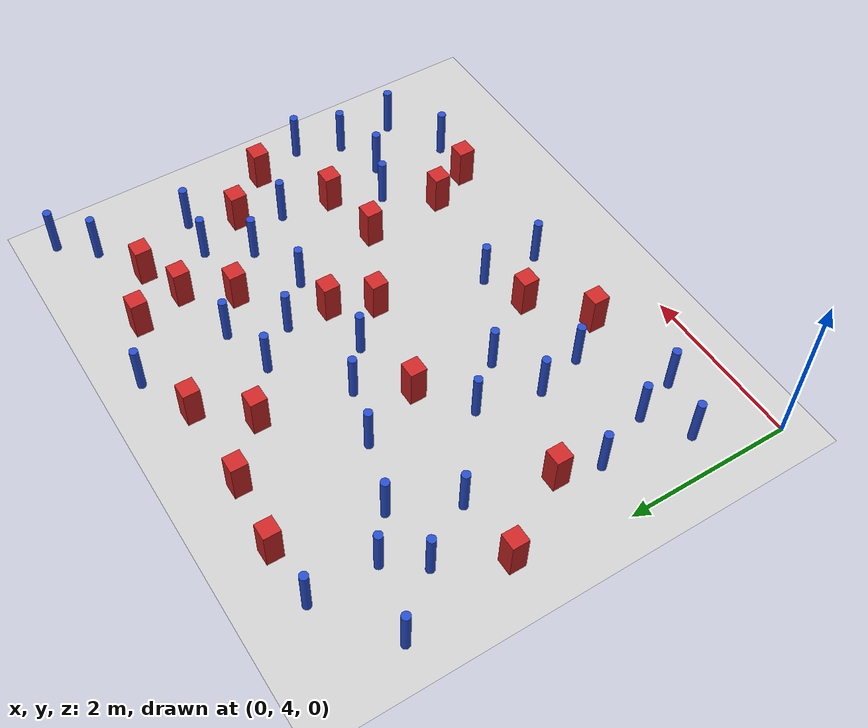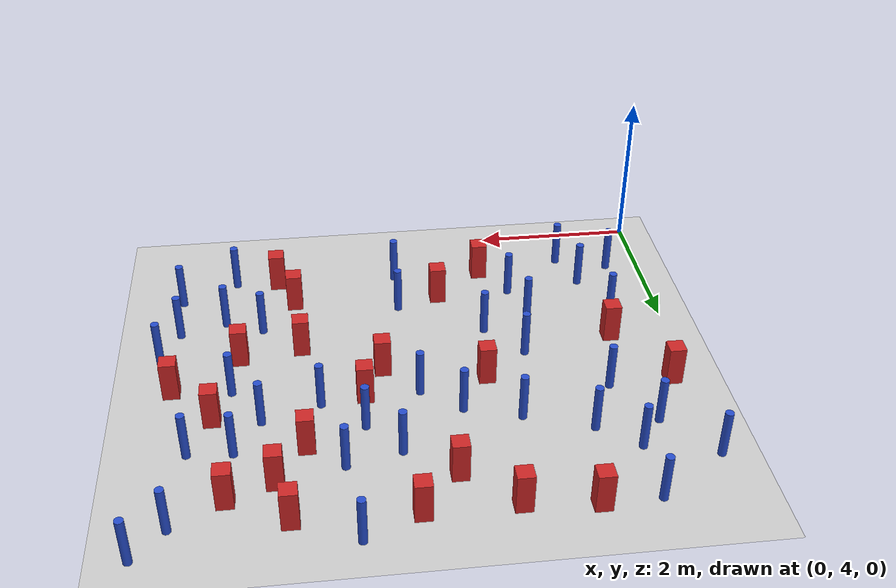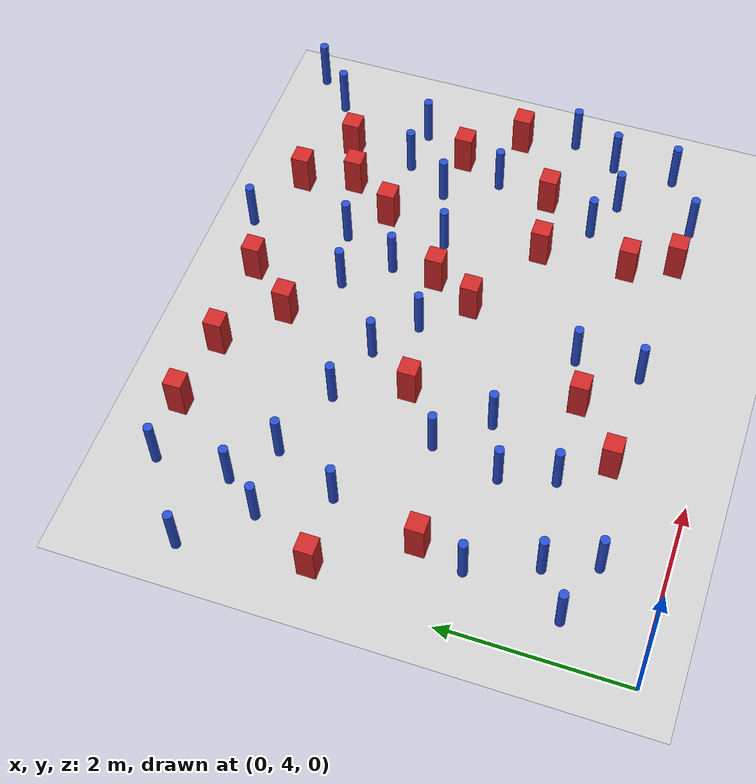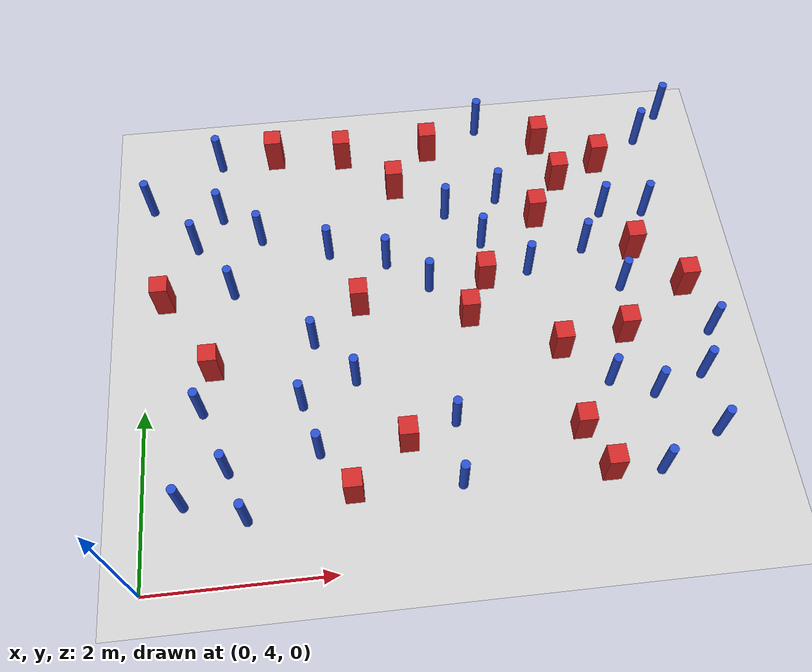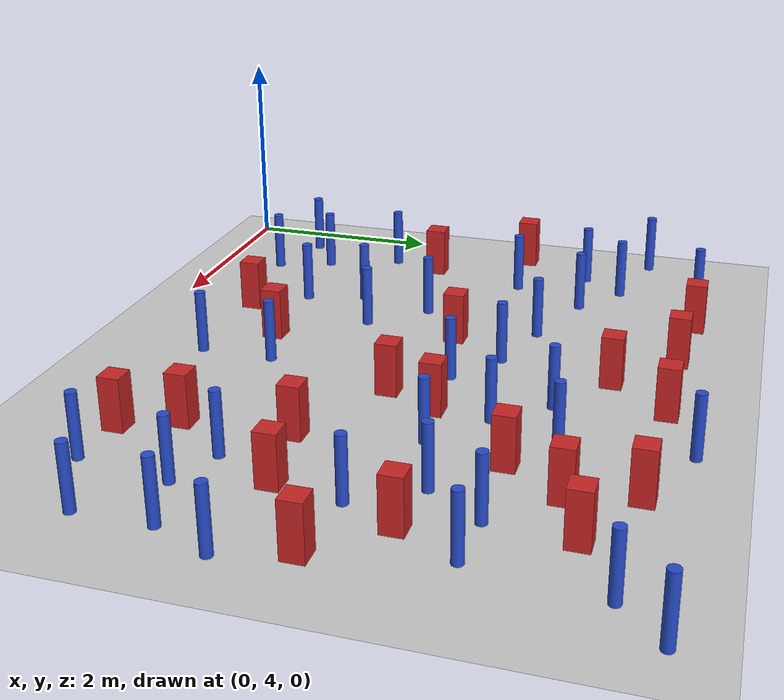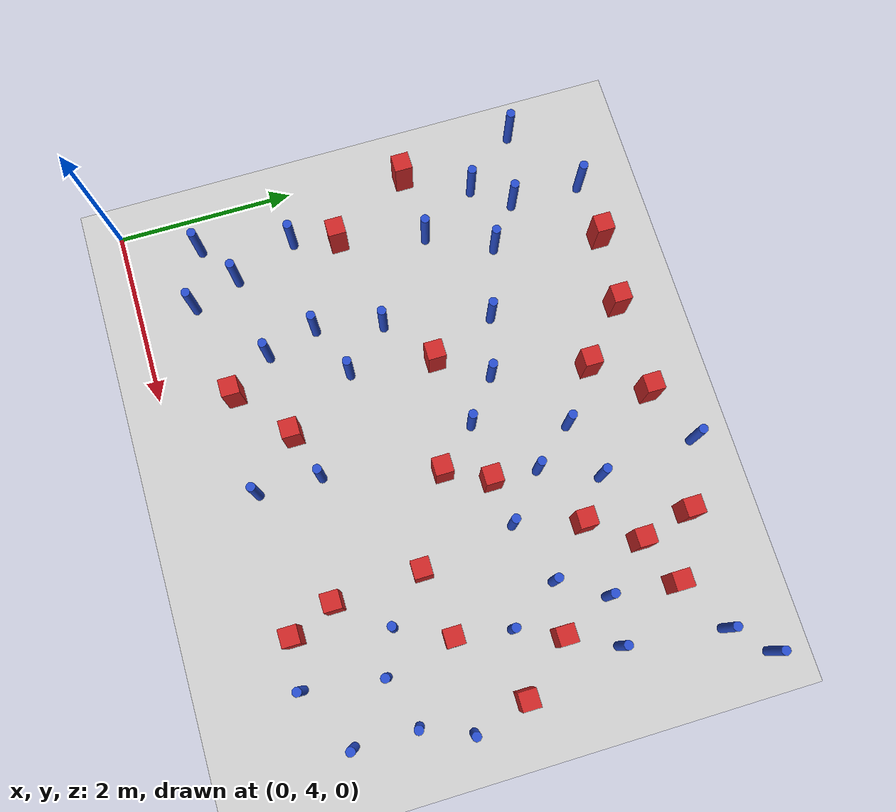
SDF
<sdf version="1.6">
 <world name="default">
  <model name="ground_plane">
   <static>1</static>
   <link name="link">
    <collision name="collision">
     <geometry><plane><normal>0 0 1</normal><size>100 100</size></plane></geometry>
     <surface><friction><ode><mu>100</mu><mu2>50</mu2></ode></friction></surface>
    </collision>
    <visual name="visual">
     <cast_shadows>0</cast_shadows>
     <geometry><plane><normal>0 0 1</normal><size>100 100</size></plane></geometry>
     <material>
      <ambient>1.0 1.0 1.0 1.0</ambient>
      <diffuse>0.8 0.8 0.8 1.0</diffuse>
      <specular>0.01 0.01 0.01 1.000000</specular>
     </material>
    </visual>
   </link>
  </model>
  <model name="pole_obstacle6">
   <static>true</static>
   <pose>6.08817874194 9.12009369706 7.38925637345e-09 -8.471706928e-08 1.24976765081e-08 -1.74513093015e-07</pose>
   <link name="link">
    <pose>0 0 0.3 0 -0 0</pose>
    <inertial>
     <mass>1</mass>
     <inertia><ixx>0.145833</ixx><ixy>0</ixy><ixz>0</ixz><iyy>0.145833</iyy><iyz>0</iyz><izz>0.125</izz></inertia>
    </inertial>
    <collision name="collision">
     <geometry><cylinder><radius>0.05</radius><length>.6</length></cylinder></geometry>
    </collision>
    <visual name="visual">
     <geometry><cylinder><radius>0.05</radius><length>.6</length></cylinder></geometry>
     <material>
      <script><name>Gazebo/Blue</name><uri>file://media/materials/scripts/gazebo.material</uri></script>
     </material>
    </visual>
   </link>
  </model>
  <model name="square_post_obstacle13">
   <static>true</static>
   <pose>0.216439725768 7.31724826247 1.91545236811e-07 -7.35059704564e-06 1.12565212e-07 2.39332434364e-05</pose>
   <link name="link">
    <pose>0 0 0.25 0 -0 0</pose>
    <inertial>
     <mass>100</mass>
     <inertia>
      <ixx>0.166667</ixx>
      <ixy>0</ixy>
      <ixz>0</ixz>
      <iyy>0.166667</iyy>
      <iyz>0</iyz>
      <izz>0.166667</izz>
     </inertia>
    </inertial>
    <collision name="collision"><geometry><box><size>.2 .2 .5</size></box></geometry></collision>
    <visual name="visual">
     <geometry><box><size>.2 .2 .5</size></box></geometry>
     <material>
      <script><name>Gazebo/Red</name><uri>file://media/materials/scripts/gazebo.material</uri></script>
     </material>
    </visual>
   </link>
  </model>
  <model name="square_post_obstacle19">
   <static>true</static>
   <pose>4.62734859927 6.2608275245 1.91545236811e-07 -7.35059704564e-06 1.12565212e-07 2.39332434364e-05</pose>
   <link name="link">
    <pose>0 0 0.25 0 -0 0</pose>
    <inertial>
     <mass>100</mass>
     <inertia>
      <ixx>0.166667</ixx>
      <ixy>0</ixy>
      <ixz>0</ixz>
      <iyy>0.166667</iyy>
      <iyz>0</iyz>
      <izz>0.166667</izz>
     </inertia>
    </inertial>
    <collision name="collision"><geometry><box><size>.2 .2 .5</size></box></geometry></collision>
    <visual name="visual">
     <geometry><box><size>.2 .2 .5</size></box></geometry>
     <material>
      <script><name>Gazebo/Red</name><uri>file://media/materials/scripts/gazebo.material</uri></script>
     </material>
    </visual>
   </link>
  </model>
  <model name="pole_obstacle11">
   <static>true</static>
   <pose>1.08762359171 4.64439114261 7.38925637345e-09 -8.47170692799e-08 1.24976765033e-08 -1.74513093018e-07</pose>
   <link name="link">
    <pose>0 0 0.3 0 -0 0</pose>
    <inertial>
     <mass>1</mass>
     <inertia><ixx>0.145833</ixx><ixy>0</ixy><ixz>0</ixz><iyy>0.145833</iyy><iyz>0</iyz><izz>0.125</izz></inertia>
    </inertial>
    <collision name="collision">
     <geometry><cylinder><radius>0.05</radius><length>.6</length></cylinder></geometry>
    </collision>
    <visual name="visual">
     <geometry><cylinder><radius>0.05</radius><length>.6</length></cylinder></geometry>
     <material>
      <script><name>Gazebo/Blue</name><uri>file://media/materials/scripts/gazebo.material</uri></script>
     </material>
    </visual>
   </link>
  </model>
  <model name="pole_obstacle12">
   <static>true</static>
   <pose>3.25595772131 7.2266986002 7.38925637345e-09 -8.47170692798e-08 1.24976765033e-08 -1.74513093019e-07</pose>
   <link name="link">
    <pose>0 0 0.3 0 -0 0</pose>
    <inertial>
     <mass>1</mass>
     <inertia><ixx>0.145833</ixx><ixy>0</ixy><ixz>0</ixz><iyy>0.145833</iyy><iyz>0</iyz><izz>0.125</izz></inertia>
    </inertial>
    <collision name="collision">
     <geometry><cylinder><radius>0.05</radius><length>.6</length></cylinder></geometry>
    </collision>
    <visual name="visual">
     <geometry><cylinder><radius>0.05</radius><length>.6</length></cylinder></geometry>
     <material>
      <script><name>Gazebo/Blue</name><uri>file://media/materials/scripts/gazebo.material</uri></script>
     </material>
    </visual>
   </link>
  </model>
  <model name="pole_obstacle14">
   <static>true</static>
   <pose>5.45333666185 4.74273611166 7.38925637345e-09 -8.47170692796e-08 1.24976764786e-08 -1.74513093032e-07</pose>
   <link name="link">
    <pose>0 0 0.3 0 -0 0</pose>
    <inertial>
     <mass>1</mass>
     <inertia><ixx>0.145833</ixx><ixy>0</ixy><ixz>0</ixz><iyy>0.145833</iyy><iyz>0</iyz><izz>0.125</izz></inertia>
    </inertial>
    <collision name="collision">
     <geometry><cylinder><radius>0.05</radius><length>.6</length></cylinder></geometry>
    </collision>
    <visual name="visual">
     <geometry><cylinder><radius>0.05</radius><length>.6</length></cylinder></geometry>
     <material>
      <script><name>Gazebo/Blue</name><uri>file://media/materials/scripts/gazebo.material</uri></script>
     </material>
    </visual>
   </link>
  </model>
  <model name="square_post_obstacle29">
   <static>true</static>
   <pose>2.20466954958 4.82856687841 1.91545236811e-07 -7.35059704564e-06 1.12565212e-07 2.39332434364e-05</pose>
   <link name="link">
    <pose>0 0 0.25 0 -0 0</pose>
    <inertial>
     <mass>100</mass>
     <inertia>
      <ixx>0.166667</ixx>
      <ixy>0</ixy>
      <ixz>0</ixz>
      <iyy>0.166667</iyy>
      <iyz>0</iyz>
      <izz>0.166667</izz>
     </inertia>
    </inertial>
    <collision name="collision"><geometry><box><size>.2 .2 .5</size></box></geometry></collision>
    <visual name="visual">
     <geometry><box><size>.2 .2 .5</size></box></geometry>
     <material>
      <script><name>Gazebo/Red</name><uri>file://media/materials/scripts/gazebo.material</uri></script>
     </material>
    </visual>
   </link>
  </model>
  <model name="pole_obstacle22">
   <static>true</static>
   <pose>4.20076544394 8.39235971659 7.38925637345e-09 -8.471706928e-08 1.24976765081e-08 -1.74513093015e-07</pose>
   <link name="link">
    <pose>0 0 0.3 0 -0 0</pose>
    <inertial>
     <mass>1</mass>
     <inertia><ixx>0.145833</ixx><ixy>0</ixy><ixz>0</ixz><iyy>0.145833</iyy><iyz>0</iyz><izz>0.125</izz></inertia>
    </inertial>
    <collision name="collision">
     <geometry><cylinder><radius>0.05</radius><length>.6</length></cylinder></geometry>
    </collision>
    <visual name="visual">
     <geometry><cylinder><radius>0.05</radius><length>.6</length></cylinder></geometry>
     <material>
      <script><name>Gazebo/Blue</name><uri>file://media/materials/scripts/gazebo.material</uri></script>
     </material>
    </visual>
   </link>
  </model>
  <model name="pole_obstacle25">
   <static>true</static>
   <pose>5.95225063616 8.01670809462 7.38925637345e-09 -8.47170692797e-08 1.24976764908e-08 -1.74513093024e-07</pose>
   <link name="link">
    <pose>0 0 0.3 0 -0 0</pose>
    <inertial>
     <mass>1</mass>
     <inertia><ixx>0.145833</ixx><ixy>0</ixy><ixz>0</ixz><iyy>0.145833</iyy><iyz>0</iyz><izz>0.125</izz></inertia>
    </inertial>
    <collision name="collision">
     <geometry><cylinder><radius>0.05</radius><length>.6</length></cylinder></geometry>
    </collision>
    <visual name="visual">
     <geometry><cylinder><radius>0.05</radius><length>.6</length></cylinder></geometry>
     <material>
      <script><name>Gazebo/Blue</name><uri>file://media/materials/scripts/gazebo.material</uri></script>
     </material>
    </visual>
   </link>
  </model>
  <model name="square_post_obstacle36">
   <static>true</static>
   <pose>4.81702987987 9.15317289132 1.91545236811e-07 -7.35059704564e-06 1.12565212e-07 2.39332434364e-05</pose>
   <link name="link">
    <pose>0 0 0.25 0 -0 0</pose>
    <inertial>
     <mass>100</mass>
     <inertia>
      <ixx>0.166667</ixx>
      <ixy>0</ixy>
      <ixz>0</ixz>
      <iyy>0.166667</iyy>
      <iyz>0</iyz>
      <izz>0.166667</izz>
     </inertia>
    </inertial>
    <collision name="collision"><geometry><box><size>.2 .2 .5</size></box></geometry></collision>
    <visual name="visual">
     <geometry><box><size>.2 .2 .5</size></box></geometry>
     <material>
      <script><name>Gazebo/Red</name><uri>file://media/materials/scripts/gazebo.material</uri></script>
     </material>
    </visual>
   </link>
  </model>
  <model name="pole_obstacle43">
   <static>true</static>
   <pose>3.34598976138 4.80389707869 7.38925637345e-09 -8.47170692798e-08 1.24976765033e-08 -1.74513093019e-07</pose>
   <link name="link">
    <pose>0 0 0.3 0 -0 0</pose>
    <inertial>
     <mass>1</mass>
     <inertia><ixx>0.145833</ixx><ixy>0</ixy><ixz>0</ixz><iyy>0.145833</iyy><iyz>0</iyz><izz>0.125</izz></inertia>
    </inertial>
    <collision name="collision">
     <geometry><cylinder><radius>0.05</radius><length>.6</length></cylinder></geometry>
    </collision>
    <visual name="visual">
     <geometry><cylinder><radius>0.05</radius><length>.6</length></cylinder></geometry>
     <material>
      <script><name>Gazebo/Blue</name><uri>file://media/materials/scripts/gazebo.material</uri></script>
     </material>
    </visual>
   </link>
  </model>
  <model name="pole_obstacle45">
   <static>true</static>
   <pose>0.878297728929 8.44076035481 7.38925637345e-09 -8.47170692797e-08 1.249767648e-08 -1.74513093032e-07</pose>
   <link name="link">
    <pose>0 0 0.3 0 -0 0</pose>
    <inertial>
     <mass>1</mass>
     <inertia><ixx>0.145833</ixx><ixy>0</ixy><ixz>0</ixz><iyy>0.145833</iyy><iyz>0</iyz><izz>0.125</izz></inertia>
    </inertial>
    <collision name="collision">
     <geometry><cylinder><radius>0.05</radius><length>.6</length></cylinder></geometry>
    </collision>
    <visual name="visual">
     <geometry><cylinder><radius>0.05</radius><length>.6</length></cylinder></geometry>
     <material>
      <script><name>Gazebo/Blue</name><uri>file://media/materials/scripts/gazebo.material</uri></script>
     </material>
    </visual>
   </link>
  </model>
  <model name="square_post_obstacle52">
   <static>true</static>
   <pose>0.758093450093 6.39684449053 1.91545236811e-07 -7.35059704564e-06 1.12565212e-07 2.39332434364e-05</pose>
   <link name="link">
    <pose>0 0 0.25 0 -0 0</pose>
    <inertial>
     <mass>100</mass>
     <inertia>
      <ixx>0.166667</ixx>
      <ixy>0</ixy>
      <ixz>0</ixz>
      <iyy>0.166667</iyy>
      <iyz>0</iyz>
      <izz>0.166667</izz>
     </inertia>
    </inertial>
    <collision name="collision"><geometry><box><size>.2 .2 .5</size></box></geometry></collision>
    <visual name="visual">
     <geometry><box><size>.2 .2 .5</size></box></geometry>
     <material>
      <script><name>Gazebo/Red</name><uri>file://media/materials/scripts/gazebo.material</uri></script>
     </material>
    </visual>
   </link>
  </model>
  <model name="pole_obstacle52">
   <static>true</static>
   <pose>0.0413583539707 8.65547459533 7.38925637345e-09 -8.47170692796e-08 1.24976764747e-08 -1.74513093035e-07</pose>
   <link name="link">
    <pose>0 0 0.3 0 -0 0</pose>
    <inertial>
     <mass>1</mass>
     <inertia><ixx>0.145833</ixx><ixy>0</ixy><ixz>0</ixz><iyy>0.145833</iyy><iyz>0</iyz><izz>0.125</izz></inertia>
    </inertial>
    <collision name="collision">
     <geometry><cylinder><radius>0.05</radius><length>.6</length></cylinder></geometry>
    </collision>
    <visual name="visual">
     <geometry><cylinder><radius>0.05</radius><length>.6</length></cylinder></geometry>
     <material>
      <script><name>Gazebo/Blue</name><uri>file://media/materials/scripts/gazebo.material</uri></script>
     </material>
    </visual>
   </link>
  </model>
  <model name="pole_obstacle56">
   <static>true</static>
   <pose>3.55582371855 8.2288344943 7.38925637345e-09 -8.47170692793e-08 1.24976764408e-08 -1.74513093041e-07</pose>
   <link name="link">
    <pose>0 0 0.3 0 -0 0</pose>
    <inertial>
     <mass>1</mass>
     <inertia><ixx>0.145833</ixx><ixy>0</ixy><ixz>0</ixz><iyy>0.145833</iyy><iyz>0</iyz><izz>0.125</izz></inertia>
    </inertial>
    <collision name="collision">
     <geometry><cylinder><radius>0.05</radius><length>.6</length></cylinder></geometry>
    </collision>
    <visual name="visual">
     <geometry><cylinder><radius>0.05</radius><length>.6</length></cylinder></geometry>
     <material>
      <script><name>Gazebo/Blue</name><uri>file://media/materials/scripts/gazebo.material</uri></script>
     </material>
    </visual>
   </link>
  </model>
  <model name="pole_obstacle61">
   <static>true</static>
   <pose>2.78945220544 7.59414157692 7.38925637345e-09 -8.47170692798e-08 1.24976765033e-08 -1.74513093019e-07</pose>
   <link name="link">
    <pose>0 0 0.3 0 -0 0</pose>
    <inertial>
     <mass>1</mass>
     <inertia><ixx>0.145833</ixx><ixy>0</ixy><ixz>0</ixz><iyy>0.145833</iyy><iyz>0</iyz><izz>0.125</izz></inertia>
    </inertial>
    <collision name="collision">
     <geometry><cylinder><radius>0.05</radius><length>.6</length></cylinder></geometry>
    </collision>
    <visual name="visual">
     <geometry><cylinder><radius>0.05</radius><length>.6</length></cylinder></geometry>
     <material>
      <script><name>Gazebo/Blue</name><uri>file://media/materials/scripts/gazebo.material</uri></script>
     </material>
    </visual>
   </link>
  </model>
  <model name="square_post_obstacle68">
   <static>true</static>
   <pose>4.9074293565 4.78971222292 1.91545236811e-07 -7.35059704564e-06 1.12565212e-07 2.39332434364e-05</pose>
   <link name="link">
    <pose>0 0 0.25 0 -0 0</pose>
    <inertial>
     <mass>100</mass>
     <inertia>
      <ixx>0.166667</ixx>
      <ixy>0</ixy>
      <ixz>0</ixz>
      <iyy>0.166667</iyy>
      <iyz>0</iyz>
      <izz>0.166667</izz>
     </inertia>
    </inertial>
    <collision name="collision"><geometry><box><size>.2 .2 .5</size></box></geometry></collision>
    <visual name="visual">
     <geometry><box><size>.2 .2 .5</size></box></geometry>
     <material>
      <script><name>Gazebo/Red</name><uri>file://media/materials/scripts/gazebo.material</uri></script>
     </material>
    </visual>
   </link>
  </model>
  <model name="pole_obstacle67">
   <static>true</static>
   <pose>0.631022375621 5.89630379071 7.38925637345e-09 -8.471706928e-08 1.24976765086e-08 -1.74513093015e-07</pose>
   <link name="link">
    <pose>0 0 0.3 0 -0 0</pose>
    <inertial>
     <mass>1</mass>
     <inertia><ixx>0.145833</ixx><ixy>0</ixy><ixz>0</ixz><iyy>0.145833</iyy><iyz>0</iyz><izz>0.125</izz></inertia>
    </inertial>
    <collision name="collision">
     <geometry><cylinder><radius>0.05</radius><length>.6</length></cylinder></geometry>
    </collision>
    <visual name="visual">
     <geometry><cylinder><radius>0.05</radius><length>.6</length></cylinder></geometry>
     <material>
      <script><name>Gazebo/Blue</name><uri>file://media/materials/scripts/gazebo.material</uri></script>
     </material>
    </visual>
   </link>
  </model>
  <model name="square_post_obstacle72">
   <static>true</static>
   <pose>2.82295303384 5.33033693111 1.91545236811e-07 -7.35059704564e-06 1.12565212e-07 2.39332434364e-05</pose>
   <link name="link">
    <pose>0 0 0.25 0 -0 0</pose>
    <inertial>
     <mass>100</mass>
     <inertia>
      <ixx>0.166667</ixx>
      <ixy>0</ixy>
      <ixz>0</ixz>
      <iyy>0.166667</iyy>
      <iyz>0</iyz>
      <izz>0.166667</izz>
     </inertia>
    </inertial>
    <collision name="collision"><geometry><box><size>.2 .2 .5</size></box></geometry></collision>
    <visual name="visual">
     <geometry><box><size>.2 .2 .5</size></box></geometry>
     <material>
      <script><name>Gazebo/Red</name><uri>file://media/materials/scripts/gazebo.material</uri></script>
     </material>
    </visual>
   </link>
  </model>
  <model name="pole_obstacle76">
   <static>true</static>
   <pose>5.10783625931 5.81094686235 7.38925637345e-09 -8.47170692796e-08 1.24976764786e-08 -1.74513093032e-07</pose>
   <link name="link">
    <pose>0 0 0.3 0 -0 0</pose>
    <inertial>
     <mass>1</mass>
     <inertia><ixx>0.145833</ixx><ixy>0</ixy><ixz>0</ixz><iyy>0.145833</iyy><iyz>0</iyz><izz>0.125</izz></inertia>
    </inertial>
    <collision name="collision">
     <geometry><cylinder><radius>0.05</radius><length>.6</length></cylinder></geometry>
    </collision>
    <visual name="visual">
     <geometry><cylinder><radius>0.05</radius><length>.6</length></cylinder></geometry>
     <material>
      <script><name>Gazebo/Blue</name><uri>file://media/materials/scripts/gazebo.material</uri></script>
     </material>
    </visual>
   </link>
  </model>
  <model name="pole_obstacle79">
   <static>true</static>
   <pose>4.43160478323 7.32779245365 7.38925637345e-09 -8.47170692796e-08 1.24976764786e-08 -1.74513093032e-07</pose>
   <link name="link">
    <pose>0 0 0.3 0 -0 0</pose>
    <inertial>
     <mass>1</mass>
     <inertia><ixx>0.145833</ixx><ixy>0</ixy><ixz>0</ixz><iyy>0.145833</iyy><iyz>0</iyz><izz>0.125</izz></inertia>
    </inertial>
    <collision name="collision">
     <geometry><cylinder><radius>0.05</radius><length>.6</length></cylinder></geometry>
    </collision>
    <visual name="visual">
     <geometry><cylinder><radius>0.05</radius><length>.6</length></cylinder></geometry>
     <material>
      <script><name>Gazebo/Blue</name><uri>file://media/materials/scripts/gazebo.material</uri></script>
     </material>
    </visual>
   </link>
  </model>
  <model name="pole_obstacle80">
   <static>true</static>
   <pose>0.428511788942 4.86364573635 7.38925637345e-09 -8.471706928e-08 1.24976765079e-08 -1.74513093015e-07</pose>
   <link name="link">
    <pose>0 0 0.3 0 -0 0</pose>
    <inertial>
     <mass>1</mass>
     <inertia><ixx>0.145833</ixx><ixy>0</ixy><ixz>0</ixz><iyy>0.145833</iyy><iyz>0</iyz><izz>0.125</izz></inertia>
    </inertial>
    <collision name="collision">
     <geometry><cylinder><radius>0.05</radius><length>.6</length></cylinder></geometry>
    </collision>
    <visual name="visual">
     <geometry><cylinder><radius>0.05</radius><length>.6</length></cylinder></geometry>
     <material>
      <script><name>Gazebo/Blue</name><uri>file://media/materials/scripts/gazebo.material</uri></script>
     </material>
    </visual>
   </link>
  </model>
  <model name="pole_obstacle82">
   <static>true</static>
   <pose>3.93623706326 7.76551051691 7.38925637345e-09 -8.47170692798e-08 1.24976765033e-08 -1.74513093019e-07</pose>
   <link name="link">
    <pose>0 0 0.3 0 -0 0</pose>
    <inertial>
     <mass>1</mass>
     <inertia><ixx>0.145833</ixx><ixy>0</ixy><ixz>0</ixz><iyy>0.145833</iyy><iyz>0</iyz><izz>0.125</izz></inertia>
    </inertial>
    <collision name="collision">
     <geometry><cylinder><radius>0.05</radius><length>.6</length></cylinder></geometry>
    </collision>
    <visual name="visual">
     <geometry><cylinder><radius>0.05</radius><length>.6</length></cylinder></geometry>
     <material>
      <script><name>Gazebo/Blue</name><uri>file://media/materials/scripts/gazebo.material</uri></script>
     </material>
    </visual>
   </link>
  </model>
  <model name="pole_obstacle83">
   <static>true</static>
   <pose>2.31998215752 6.11020826251 7.38925637345e-09 -8.47170692798e-08 1.24976765033e-08 -1.74513093019e-07</pose>
   <link name="link">
    <pose>0 0 0.3 0 -0 0</pose>
    <inertial>
     <mass>1</mass>
     <inertia><ixx>0.145833</ixx><ixy>0</ixy><ixz>0</ixz><iyy>0.145833</iyy><iyz>0</iyz><izz>0.125</izz></inertia>
    </inertial>
    <collision name="collision">
     <geometry><cylinder><radius>0.05</radius><length>.6</length></cylinder></geometry>
    </collision>
    <visual name="visual">
     <geometry><cylinder><radius>0.05</radius><length>.6</length></cylinder></geometry>
     <material>
      <script><name>Gazebo/Blue</name><uri>file://media/materials/scripts/gazebo.material</uri></script>
     </material>
    </visual>
   </link>
  </model>
  <model name="square_post_obstacle80">
   <static>true</static>
   <pose>5.49721984606 8.78683991272 1.91545236811e-07 -7.35059704564e-06 1.12565212e-07 2.39332434364e-05</pose>
   <link name="link">
    <pose>0 0 0.25 0 -0 0</pose>
    <inertial>
     <mass>100</mass>
     <inertia>
      <ixx>0.166667</ixx>
      <ixy>0</ixy>
      <ixz>0</ixz>
      <iyy>0.166667</iyy>
      <iyz>0</iyz>
      <izz>0.166667</izz>
     </inertia>
    </inertial>
    <collision name="collision"><geometry><box><size>.2 .2 .5</size></box></geometry></collision>
    <visual name="visual">
     <geometry><box><size>.2 .2 .5</size></box></geometry>
     <material>
      <script><name>Gazebo/Red</name><uri>file://media/materials/scripts/gazebo.material</uri></script>
     </material>
    </visual>
   </link>
  </model>
  <model name="pole_obstacle88">
   <static>true</static>
   <pose>6.35551243071 6.31636889916 7.38925637345e-09 -8.47170692796e-08 1.24976764786e-08 -1.74513093032e-07</pose>
   <link name="link">
    <pose>0 0 0.3 0 -0 0</pose>
    <inertial>
     <mass>1</mass>
     <inertia><ixx>0.145833</ixx><ixy>0</ixy><ixz>0</ixz><iyy>0.145833</iyy><iyz>0</iyz><izz>0.125</izz></inertia>
    </inertial>
    <collision name="collision">
     <geometry><cylinder><radius>0.05</radius><length>.6</length></cylinder></geometry>
    </collision>
    <visual name="visual">
     <geometry><cylinder><radius>0.05</radius><length>.6</length></cylinder></geometry>
     <material>
      <script><name>Gazebo/Blue</name><uri>file://media/materials/scripts/gazebo.material</uri></script>
     </material>
    </visual>
   </link>
  </model>
  <model name="square_post_obstacle89">
   <static>true</static>
   <pose>3.66438047026 6.77375112056 1.91545236811e-07 -7.35059704564e-06 1.12565212e-07 2.39332434364e-05</pose>
   <link name="link">
    <pose>0 0 0.25 0 -0 0</pose>
    <inertial>
     <mass>100</mass>
     <inertia>
      <ixx>0.166667</ixx>
      <ixy>0</ixy>
      <ixz>0</ixz>
      <iyy>0.166667</iyy>
      <iyz>0</iyz>
      <izz>0.166667</izz>
     </inertia>
    </inertial>
    <collision name="collision"><geometry><box><size>.2 .2 .5</size></box></geometry></collision>
    <visual name="visual">
     <geometry><box><size>.2 .2 .5</size></box></geometry>
     <material>
      <script><name>Gazebo/Red</name><uri>file://media/materials/scripts/gazebo.material</uri></script>
     </material>
    </visual>
   </link>
  </model>
  <model name="pole_obstacle116">
   <static>true</static>
   <pose>1.71935511037 5.87305841957 7.38925637345e-09 -8.47170692799e-08 1.24976765033e-08 -1.74513093018e-07</pose>
   <link name="link">
    <pose>0 0 0.3 0 -0 0</pose>
    <inertial>
     <mass>1</mass>
     <inertia><ixx>0.145833</ixx><ixy>0</ixy><ixz>0</ixz><iyy>0.145833</iyy><iyz>0</iyz><izz>0.125</izz></inertia>
    </inertial>
    <collision name="collision">
     <geometry><cylinder><radius>0.05</radius><length>.6</length></cylinder></geometry>
    </collision>
    <visual name="visual">
     <geometry><cylinder><radius>0.05</radius><length>.6</length></cylinder></geometry>
     <material>
      <script><name>Gazebo/Blue</name><uri>file://media/materials/scripts/gazebo.material</uri></script>
     </material>
    </visual>
   </link>
  </model>
  <model name="pole_obstacle117">
   <static>true</static>
   <pose>6.13856425732 5.79411274661 7.38925637345e-09 -8.47170692796e-08 1.24976764786e-08 -1.74513093032e-07</pose>
   <link name="link">
    <pose>0 0 0.3 0 -0 0</pose>
    <inertial>
     <mass>1</mass>
     <inertia><ixx>0.145833</ixx><ixy>0</ixy><ixz>0</ixz><iyy>0.145833</iyy><iyz>0</iyz><izz>0.125</izz></inertia>
    </inertial>
    <collision name="collision">
     <geometry><cylinder><radius>0.05</radius><length>.6</length></cylinder></geometry>
    </collision>
    <visual name="visual">
     <geometry><cylinder><radius>0.05</radius><length>.6</length></cylinder></geometry>
     <material>
      <script><name>Gazebo/Blue</name><uri>file://media/materials/scripts/gazebo.material</uri></script>
     </material>
    </visual>
   </link>
  </model>
  <model name="square_post_obstacle103">
   <static>true</static>
   <pose>1.55200115474 9.26930186187 1.91545236811e-07 -7.35059704564e-06 1.12565212e-07 2.39332434364e-05</pose>
   <link name="link">
    <pose>0 0 0.25 0 -0 0</pose>
    <inertial>
     <mass>100</mass>
     <inertia>
      <ixx>0.166667</ixx>
      <ixy>0</ixy>
      <ixz>0</ixz>
      <iyy>0.166667</iyy>
      <iyz>0</iyz>
      <izz>0.166667</izz>
     </inertia>
    </inertial>
    <collision name="collision"><geometry><box><size>.2 .2 .5</size></box></geometry></collision>
    <visual name="visual">
     <geometry><box><size>.2 .2 .5</size></box></geometry>
     <material>
      <script><name>Gazebo/Red</name><uri>file://media/materials/scripts/gazebo.material</uri></script>
     </material>
    </visual>
   </link>
  </model>
  <model name="square_post_obstacle112">
   <static>true</static>
   <pose>4.68922648924 5.28324228299 1.91545236811e-07 -7.35059704564e-06 1.12565212e-07 2.39332434364e-05</pose>
   <link name="link">
    <pose>0 0 0.25 0 -0 0</pose>
    <inertial>
     <mass>100</mass>
     <inertia>
      <ixx>0.166667</ixx>
      <ixy>0</ixy>
      <ixz>0</ixz>
      <iyy>0.166667</iyy>
      <iyz>0</iyz>
      <izz>0.166667</izz>
     </inertia>
    </inertial>
    <collision name="collision"><geometry><box><size>.2 .2 .5</size></box></geometry></collision>
    <visual name="visual">
     <geometry><box><size>.2 .2 .5</size></box></geometry>
     <material>
      <script><name>Gazebo/Red</name><uri>file://media/materials/scripts/gazebo.material</uri></script>
     </material>
    </visual>
   </link>
  </model>
  <model name="pole_obstacle123">
   <static>true</static>
   <pose>1.87301887341 5.29840859714 7.38925637345e-09 -8.47170692799e-08 1.24976765033e-08 -1.74513093018e-07</pose>
   <link name="link">
    <pose>0 0 0.3 0 -0 0</pose>
    <inertial>
     <mass>1</mass>
     <inertia><ixx>0.145833</ixx><ixy>0</ixy><ixz>0</ixz><iyy>0.145833</iyy><iyz>0</iyz><izz>0.125</izz></inertia>
    </inertial>
    <collision name="collision">
     <geometry><cylinder><radius>0.05</radius><length>.6</length></cylinder></geometry>
    </collision>
    <visual name="visual">
     <geometry><cylinder><radius>0.05</radius><length>.6</length></cylinder></geometry>
     <material>
      <script><name>Gazebo/Blue</name><uri>file://media/materials/scripts/gazebo.material</uri></script>
     </material>
    </visual>
   </link>
  </model>
  <model name="pole_obstacle138">
   <static>true</static>
   <pose>1.88504828187 6.61822307919 7.38925637345e-09 -8.47170692799e-08 1.24976765033e-08 -1.74513093018e-07</pose>
   <link name="link">
    <pose>0 0 0.3 0 -0 0</pose>
    <inertial>
     <mass>1</mass>
     <inertia><ixx>0.145833</ixx><ixy>0</ixy><ixz>0</ixz><iyy>0.145833</iyy><iyz>0</iyz><izz>0.125</izz></inertia>
    </inertial>
    <collision name="collision">
     <geometry><cylinder><radius>0.05</radius><length>.6</length></cylinder></geometry>
    </collision>
    <visual name="visual">
     <geometry><cylinder><radius>0.05</radius><length>.6</length></cylinder></geometry>
     <material>
      <script><name>Gazebo/Blue</name><uri>file://media/materials/scripts/gazebo.material</uri></script>
     </material>
    </visual>
   </link>
  </model>
  <model name="pole_obstacle139">
   <static>true</static>
   <pose>5.43283909795 8.05684460021 7.38925637345e-09 -8.471706928e-08 1.24976765081e-08 -1.74513093015e-07</pose>
   <link name="link">
    <pose>0 0 0.3 0 -0 0</pose>
    <inertial>
     <mass>1</mass>
     <inertia><ixx>0.145833</ixx><ixy>0</ixy><ixz>0</ixz><iyy>0.145833</iyy><iyz>0</iyz><izz>0.125</izz></inertia>
    </inertial>
    <collision name="collision">
     <geometry><cylinder><radius>0.05</radius><length>.6</length></cylinder></geometry>
    </collision>
    <visual name="visual">
     <geometry><cylinder><radius>0.05</radius><length>.6</length></cylinder></geometry>
     <material>
      <script><name>Gazebo/Blue</name><uri>file://media/materials/scripts/gazebo.material</uri></script>
     </material>
    </visual>
   </link>
  </model>
  <model name="square_post_obstacle125">
   <static>true</static>
   <pose>5.3795449978 6.3828265639 1.91545236811e-07 -7.35059704564e-06 1.12565212e-07 2.39332434364e-05</pose>
   <link name="link">
    <pose>0 0 0.25 0 -0 0</pose>
    <inertial>
     <mass>100</mass>
     <inertia>
      <ixx>0.166667</ixx>
      <ixy>0</ixy>
      <ixz>0</ixz>
      <iyy>0.166667</iyy>
      <iyz>0</iyz>
      <izz>0.166667</izz>
     </inertia>
    </inertial>
    <collision name="collision"><geometry><box><size>.2 .2 .5</size></box></geometry></collision>
    <visual name="visual">
     <geometry><box><size>.2 .2 .5</size></box></geometry>
     <material>
      <script><name>Gazebo/Red</name><uri>file://media/materials/scripts/gazebo.material</uri></script>
     </material>
    </visual>
   </link>
  </model>
  <model name="square_post_obstacle127">
   <static>true</static>
   <pose>2.43511805036 7.05404638894 1.91545236811e-07 -7.35059704564e-06 1.12565212e-07 2.39332434364e-05</pose>
   <link name="link">
    <pose>0 0 0.25 0 -0 0</pose>
    <inertial>
     <mass>100</mass>
     <inertia>
      <ixx>0.166667</ixx>
      <ixy>0</ixy>
      <ixz>0</ixz>
      <iyy>0.166667</iyy>
      <iyz>0</iyz>
      <izz>0.166667</izz>
     </inertia>
    </inertial>
    <collision name="collision"><geometry><box><size>.2 .2 .5</size></box></geometry></collision>
    <visual name="visual">
     <geometry><box><size>.2 .2 .5</size></box></geometry>
     <material>
      <script><name>Gazebo/Red</name><uri>file://media/materials/scripts/gazebo.material</uri></script>
     </material>
    </visual>
   </link>
  </model>
  <model name="square_post_obstacle132">
   <static>true</static>
   <pose>4.61784710137 8.05004361784 1.91545236811e-07 -7.35059704564e-06 1.12565212e-07 2.39332434364e-05</pose>
   <link name="link">
    <pose>0 0 0.25 0 -0 0</pose>
    <inertial>
     <mass>100</mass>
     <inertia>
      <ixx>0.166667</ixx>
      <ixy>0</ixy>
      <ixz>0</ixz>
      <iyy>0.166667</iyy>
      <iyz>0</iyz>
      <izz>0.166667</izz>
     </inertia>
    </inertial>
    <collision name="collision"><geometry><box><size>.2 .2 .5</size></box></geometry></collision>
    <visual name="visual">
     <geometry><box><size>.2 .2 .5</size></box></geometry>
     <material>
      <script><name>Gazebo/Red</name><uri>file://media/materials/scripts/gazebo.material</uri></script>
     </material>
    </visual>
   </link>
  </model>
  <model name="square_post_obstacle133">
   <static>true</static>
   <pose>2.97976207116 8.65335655421 1.91545236811e-07 -7.35059704564e-06 1.12565212e-07 2.39332434364e-05</pose>
   <link name="link">
    <pose>0 0 0.25 0 -0 0</pose>
    <inertial>
     <mass>100</mass>
     <inertia>
      <ixx>0.166667</ixx>
      <ixy>0</ixy>
      <ixz>0</ixz>
      <iyy>0.166667</iyy>
      <iyz>0</iyz>
      <izz>0.166667</izz>
     </inertia>
    </inertial>
    <collision name="collision"><geometry><box><size>.2 .2 .5</size></box></geometry></collision>
    <visual name="visual">
     <geometry><box><size>.2 .2 .5</size></box></geometry>
     <material>
      <script><name>Gazebo/Red</name><uri>file://media/materials/scripts/gazebo.material</uri></script>
     </material>
    </visual>
   </link>
  </model>
  <model name="square_post_obstacle138">
   <static>true</static>
   <pose>6.18026852594 6.92249966784 1.91545236811e-07 -7.35059704564e-06 1.12565212e-07 2.39332434364e-05</pose>
   <link name="link">
    <pose>0 0 0.25 0 -0 0</pose>
    <inertial>
     <mass>100</mass>
     <inertia>
      <ixx>0.166667</ixx>
      <ixy>0</ixy>
      <ixz>0</ixz>
      <iyy>0.166667</iyy>
      <iyz>0</iyz>
      <izz>0.166667</izz>
     </inertia>
    </inertial>
    <collision name="collision"><geometry><box><size>.2 .2 .5</size></box></geometry></collision>
    <visual name="visual">
     <geometry><box><size>.2 .2 .5</size></box></geometry>
     <material>
      <script><name>Gazebo/Red</name><uri>file://media/materials/scripts/gazebo.material</uri></script>
     </material>
    </visual>
   </link>
  </model>
  <model name="pole_obstacle149">
   <static>true</static>
   <pose>0.877445800006 9.24471626575 7.38925637345e-09 -8.47170692797e-08 1.249767648e-08 -1.74513093032e-07</pose>
   <link name="link">
    <pose>0 0 0.3 0 -0 0</pose>
    <inertial>
     <mass>1</mass>
     <inertia><ixx>0.145833</ixx><ixy>0</ixy><ixz>0</ixz><iyy>0.145833</iyy><iyz>0</iyz><izz>0.125</izz></inertia>
    </inertial>
    <collision name="collision">
     <geometry><cylinder><radius>0.05</radius><length>.6</length></cylinder></geometry>
    </collision>
    <visual name="visual">
     <geometry><cylinder><radius>0.05</radius><length>.6</length></cylinder></geometry>
     <material>
      <script><name>Gazebo/Blue</name><uri>file://media/materials/scripts/gazebo.material</uri></script>
     </material>
    </visual>
   </link>
  </model>
  <model name="pole_obstacle159">
   <static>true</static>
   <pose>2.12772008952 7.79949059547 7.38925637345e-09 -8.47170692798e-08 1.24976765033e-08 -1.74513093019e-07</pose>
   <link name="link">
    <pose>0 0 0.3 0 -0 0</pose>
    <inertial>
     <mass>1</mass>
     <inertia><ixx>0.145833</ixx><ixy>0</ixy><ixz>0</ixz><iyy>0.145833</iyy><iyz>0</iyz><izz>0.125</izz></inertia>
    </inertial>
    <collision name="collision">
     <geometry><cylinder><radius>0.05</radius><length>.6</length></cylinder></geometry>
    </collision>
    <visual name="visual">
     <geometry><cylinder><radius>0.05</radius><length>.6</length></cylinder></geometry>
     <material>
      <script><name>Gazebo/Blue</name><uri>file://media/materials/scripts/gazebo.material</uri></script>
     </material>
    </visual>
   </link>
  </model>
  <model name="pole_obstacle162">
   <static>true</static>
   <pose>0.997284805495 7.36590302916 7.38925637345e-09 -8.471706928e-08 1.24976765144e-08 -1.74513093012e-07</pose>
   <link name="link">
    <pose>0 0 0.3 0 -0 0</pose>
    <inertial>
     <mass>1</mass>
     <inertia><ixx>0.145833</ixx><ixy>0</ixy><ixz>0</ixz><iyy>0.145833</iyy><iyz>0</iyz><izz>0.125</izz></inertia>
    </inertial>
    <collision name="collision">
     <geometry><cylinder><radius>0.05</radius><length>.6</length></cylinder></geometry>
    </collision>
    <visual name="visual">
     <geometry><cylinder><radius>0.05</radius><length>.6</length></cylinder></geometry>
     <material>
      <script><name>Gazebo/Blue</name><uri>file://media/materials/scripts/gazebo.material</uri></script>
     </material>
    </visual>
   </link>
  </model>
  <model name="pole_obstacle171">
   <static>true</static>
   <pose>3.35653815382 5.50753107283 7.38925637345e-09 -8.47170692798e-08 1.24976765033e-08 -1.74513093019e-07</pose>
   <link name="link">
    <pose>0 0 0.3 0 -0 0</pose>
    <inertial>
     <mass>1</mass>
     <inertia><ixx>0.145833</ixx><ixy>0</ixy><ixz>0</ixz><iyy>0.145833</iyy><iyz>0</iyz><izz>0.125</izz></inertia>
    </inertial>
    <collision name="collision">
     <geometry><cylinder><radius>0.05</radius><length>.6</length></cylinder></geometry>
    </collision>
    <visual name="visual">
     <geometry><cylinder><radius>0.05</radius><length>.6</length></cylinder></geometry>
     <material>
      <script><name>Gazebo/Blue</name><uri>file://media/materials/scripts/gazebo.material</uri></script>
     </material>
    </visual>
   </link>
  </model>
  <model name="pole_obstacle172">
   <static>true</static>
   <pose>5.57319171238 5.61291250382 7.38925637345e-09 -8.47170692796e-08 1.24976764786e-08 -1.74513093032e-07</pose>
   <link name="link">
    <pose>0 0 0.3 0 -0 0</pose>
    <inertial>
     <mass>1</mass>
     <inertia><ixx>0.145833</ixx><ixy>0</ixy><ixz>0</ixz><iyy>0.145833</iyy><iyz>0</iyz><izz>0.125</izz></inertia>
    </inertial>
    <collision name="collision">
     <geometry><cylinder><radius>0.05</radius><length>.6</length></cylinder></geometry>
    </collision>
    <visual name="visual">
     <geometry><cylinder><radius>0.05</radius><length>.6</length></cylinder></geometry>
     <material>
      <script><name>Gazebo/Blue</name><uri>file://media/materials/scripts/gazebo.material</uri></script>
     </material>
    </visual>
   </link>
  </model>
  <model name="square_post_obstacle166">
   <static>true</static>
   <pose>3.90782972695 7.24944462668 1.91545236811e-07 -7.35059704564e-06 1.12565212e-07 2.39332434364e-05</pose>
   <link name="link">
    <pose>0 0 0.25 0 -0 0</pose>
    <inertial>
     <mass>100</mass>
     <inertia>
      <ixx>0.166667</ixx>
      <ixy>0</ixy>
      <ixz>0</ixz>
      <iyy>0.166667</iyy>
      <iyz>0</iyz>
      <izz>0.166667</izz>
     </inertia>
    </inertial>
    <collision name="collision"><geometry><box><size>.2 .2 .5</size></box></geometry></collision>
    <visual name="visual">
     <geometry><box><size>.2 .2 .5</size></box></geometry>
     <material>
      <script><name>Gazebo/Red</name><uri>file://media/materials/scripts/gazebo.material</uri></script>
     </material>
    </visual>
   </link>
  </model>
  <model name="square_post_obstacle169">
   <static>true</static>
   <pose>3.44114962396 9.19354634616 1.91545236811e-07 -7.35059704564e-06 1.12565212e-07 2.39332434364e-05</pose>
   <link name="link">
    <pose>0 0 0.25 0 -0 0</pose>
    <inertial>
     <mass>100</mass>
     <inertia>
      <ixx>0.166667</ixx>
      <ixy>0</ixy>
      <ixz>0</ixz>
      <iyy>0.166667</iyy>
      <iyz>0</iyz>
      <izz>0.166667</izz>
     </inertia>
    </inertial>
    <collision name="collision"><geometry><box><size>.2 .2 .5</size></box></geometry></collision>
    <visual name="visual">
     <geometry><box><size>.2 .2 .5</size></box></geometry>
     <material>
      <script><name>Gazebo/Red</name><uri>file://media/materials/scripts/gazebo.material</uri></script>
     </material>
    </visual>
   </link>
  </model>
  <model name="pole_obstacle185">
   <static>true</static>
   <pose>0.577584847521 8.03617237183 7.38925637345e-09 -8.47170692798e-08 1.24976764951e-08 -1.74513093022e-07</pose>
   <link name="link">
    <pose>0 0 0.3 0 -0 0</pose>
    <inertial>
     <mass>1</mass>
     <inertia><ixx>0.145833</ixx><ixy>0</ixy><ixz>0</ixz><iyy>0.145833</iyy><iyz>0</iyz><izz>0.125</izz></inertia>
    </inertial>
    <collision name="collision">
     <geometry><cylinder><radius>0.05</radius><length>.6</length></cylinder></geometry>
    </collision>
    <visual name="visual">
     <geometry><cylinder><radius>0.05</radius><length>.6</length></cylinder></geometry>
     <material>
      <script><name>Gazebo/Blue</name><uri>file://media/materials/scripts/gazebo.material</uri></script>
     </material>
    </visual>
   </link>
  </model>
  <model name="square_post_obstacle174">
   <static>true</static>
   <pose>5.68608223295 7.4797412238 1.91545236811e-07 -7.35059704564e-06 1.12565212e-07 2.39332434364e-05</pose>
   <link name="link">
    <pose>0 0 0.25 0 -0 0</pose>
    <inertial>
     <mass>100</mass>
     <inertia>
      <ixx>0.166667</ixx>
      <ixy>0</ixy>
      <ixz>0</ixz>
      <iyy>0.166667</iyy>
      <iyz>0</iyz>
      <izz>0.166667</izz>
     </inertia>
    </inertial>
    <collision name="collision"><geometry><box><size>.2 .2 .5</size></box></geometry></collision>
    <visual name="visual">
     <geometry><box><size>.2 .2 .5</size></box></geometry>
     <material>
      <script><name>Gazebo/Red</name><uri>file://media/materials/scripts/gazebo.material</uri></script>
     </material>
    </visual>
   </link>
  </model>
  <model name="square_post_obstacle196">
   <static>true</static>
   <pose>2.38279572832 9.18616901563 1.91545236811e-07 -7.35059704564e-06 1.12565212e-07 2.39332434364e-05</pose>
   <link name="link">
    <pose>0 0 0.25 0 -0 0</pose>
    <inertial>
     <mass>100</mass>
     <inertia>
      <ixx>0.166667</ixx>
      <ixy>0</ixy>
      <ixz>0</ixz>
      <iyy>0.166667</iyy>
      <iyz>0</iyz>
      <izz>0.166667</izz>
     </inertia>
    </inertial>
    <collision name="collision"><geometry><box><size>.2 .2 .5</size></box></geometry></collision>
    <visual name="visual">
     <geometry><box><size>.2 .2 .5</size></box></geometry>
     <material>
      <script><name>Gazebo/Red</name><uri>file://media/materials/scripts/gazebo.material</uri></script>
     </material>
    </visual>
   </link>
  </model>
  <model name="pole_obstacle195">
   <static>true</static>
   <pose>6.44313654667 9.49627000006 7.38925637345e-09 -8.471706928e-08 1.24976765081e-08 -1.74513093015e-07</pose>
   <link name="link">
    <pose>0 0 0.3 0 -0 0</pose>
    <inertial>
     <mass>1</mass>
     <inertia><ixx>0.145833</ixx><ixy>0</ixy><ixz>0</ixz><iyy>0.145833</iyy><iyz>0</iyz><izz>0.125</izz></inertia>
    </inertial>
    <collision name="collision">
     <geometry><cylinder><radius>0.05</radius><length>.6</length></cylinder></geometry>
    </collision>
    <visual name="visual">
     <geometry><cylinder><radius>0.05</radius><length>.6</length></cylinder></geometry>
     <material>
      <script><name>Gazebo/Blue</name><uri>file://media/materials/scripts/gazebo.material</uri></script>
     </material>
    </visual>
   </link>
  </model>
  <model name="square_post_obstacle204">
   <static>true</static>
   <pose>4.96940931998 8.5702643435 1.91545236811e-07 -7.35059704564e-06 1.12565212e-07 2.39332434364e-05</pose>
   <link name="link">
    <pose>0 0 0.25 0 -0 0</pose>
    <inertial>
     <mass>100</mass>
     <inertia>
      <ixx>0.166667</ixx>
      <ixy>0</ixy>
      <ixz>0</ixz>
      <iyy>0.166667</iyy>
      <iyz>0</iyz>
      <izz>0.166667</izz>
     </inertia>
    </inertial>
    <collision name="collision"><geometry><box><size>.2 .2 .5</size></box></geometry></collision>
    <visual name="visual">
     <geometry><box><size>.2 .2 .5</size></box></geometry>
     <material>
      <script><name>Gazebo/Red</name><uri>file://media/materials/scripts/gazebo.material</uri></script>
     </material>
    </visual>
   </link>
  </model>
  <model name="pole_obstacle202">
   <static>true</static>
   <pose>0.898798829418 5.18214342212 7.38925637345e-09 -8.471706928e-08 1.24976765086e-08 -1.74513093015e-07</pose>
   <link name="link">
    <pose>0 0 0.3 0 -0 0</pose>
    <inertial>
     <mass>1</mass>
     <inertia><ixx>0.145833</ixx><ixy>0</ixy><ixz>0</ixz><iyy>0.145833</iyy><iyz>0</iyz><izz>0.125</izz></inertia>
    </inertial>
    <collision name="collision">
     <geometry><cylinder><radius>0.05</radius><length>.6</length></cylinder></geometry>
    </collision>
    <visual name="visual">
     <geometry><cylinder><radius>0.05</radius><length>.6</length></cylinder></geometry>
     <material>
      <script><name>Gazebo/Blue</name><uri>file://media/materials/scripts/gazebo.material</uri></script>
     </material>
    </visual>
   </link>
  </model>
  <model name="pole_obstacle203">
   <static>true</static>
   <pose>5.4738915958 6.99830385057 7.38925637345e-09 -8.47170692796e-08 1.24976764786e-08 -1.74513093032e-07</pose>
   <link name="link">
    <pose>0 0 0.3 0 -0 0</pose>
    <inertial>
     <mass>1</mass>
     <inertia><ixx>0.145833</ixx><ixy>0</ixy><ixz>0</ixz><iyy>0.145833</iyy><iyz>0</iyz><izz>0.125</izz></inertia>
    </inertial>
    <collision name="collision">
     <geometry><cylinder><radius>0.05</radius><length>.6</length></cylinder></geometry>
    </collision>
    <visual name="visual">
     <geometry><cylinder><radius>0.05</radius><length>.6</length></cylinder></geometry>
     <material>
      <script><name>Gazebo/Blue</name><uri>file://media/materials/scripts/gazebo.material</uri></script>
     </material>
    </visual>
   </link>
  </model>
  <model name="pole_obstacle211">
   <static>true</static>
   <pose>1.33810776144 8.08317704056 7.38925637345e-09 -8.47170692798e-08 1.24976764881e-08 -1.74513093027e-07</pose>
   <link name="link">
    <pose>0 0 0.3 0 -0 0</pose>
    <inertial>
     <mass>1</mass>
     <inertia><ixx>0.145833</ixx><ixy>0</ixy><ixz>0</ixz><iyy>0.145833</iyy><iyz>0</iyz><izz>0.125</izz></inertia>
    </inertial>
    <collision name="collision">
     <geometry><cylinder><radius>0.05</radius><length>.6</length></cylinder></geometry>
    </collision>
    <visual name="visual">
     <geometry><cylinder><radius>0.05</radius><length>.6</length></cylinder></geometry>
     <material>
      <script><name>Gazebo/Blue</name><uri>file://media/materials/scripts/gazebo.material</uri></script>
     </material>
    </visual>
   </link>
  </model>
  <model name="pole_obstacle214">
   <static>true</static>
   <pose>4.0897142739 9.48788837087 7.38925637345e-09 -8.471706928e-08 1.24976765081e-08 -1.74513093015e-07</pose>
   <link name="link">
    <pose>0 0 0.3 0 -0 0</pose>
    <inertial>
     <mass>1</mass>
     <inertia><ixx>0.145833</ixx><ixy>0</ixy><ixz>0</ixz><iyy>0.145833</iyy><iyz>0</iyz><izz>0.125</izz></inertia>
    </inertial>
    <collision name="collision">
     <geometry><cylinder><radius>0.05</radius><length>.6</length></cylinder></geometry>
    </collision>
    <visual name="visual">
     <geometry><cylinder><radius>0.05</radius><length>.6</length></cylinder></geometry>
     <material>
      <script><name>Gazebo/Blue</name><uri>file://media/materials/scripts/gazebo.material</uri></script>
     </material>
    </visual>
   </link>
  </model>
  <model name="pole_obstacle223">
   <static>true</static>
   <pose>6.14320712867 5.1003860485 7.38925637345e-09 -8.47170692796e-08 1.24976764786e-08 -1.74513093032e-07</pose>
   <link name="link">
    <pose>0 0 0.3 0 -0 0</pose>
    <inertial>
     <mass>1</mass>
     <inertia><ixx>0.145833</ixx><ixy>0</ixy><ixz>0</ixz><iyy>0.145833</iyy><iyz>0</iyz><izz>0.125</izz></inertia>
    </inertial>
    <collision name="collision">
     <geometry><cylinder><radius>0.05</radius><length>.6</length></cylinder></geometry>
    </collision>
    <visual name="visual">
     <geometry><cylinder><radius>0.05</radius><length>.6</length></cylinder></geometry>
     <material>
      <script><name>Gazebo/Blue</name><uri>file://media/materials/scripts/gazebo.material</uri></script>
     </material>
    </visual>
   </link>
  </model>
  <model name="pole_obstacle227">
   <static>true</static>
   <pose>5.12431000957 7.56189002078 7.38925637345e-09 -8.47170692796e-08 1.24976764786e-08 -1.74513093032e-07</pose>
   <link name="link">
    <pose>0 0 0.3 0 -0 0</pose>
    <inertial>
     <mass>1</mass>
     <inertia><ixx>0.145833</ixx><ixy>0</ixy><ixz>0</ixz><iyy>0.145833</iyy><iyz>0</iyz><izz>0.125</izz></inertia>
    </inertial>
    <collision name="collision">
     <geometry><cylinder><radius>0.05</radius><length>.6</length></cylinder></geometry>
    </collision>
    <visual name="visual">
     <geometry><cylinder><radius>0.05</radius><length>.6</length></cylinder></geometry>
     <material>
      <script><name>Gazebo/Blue</name><uri>file://media/materials/scripts/gazebo.material</uri></script>
     </material>
    </visual>
   </link>
  </model>
 </world>
</sdf>
